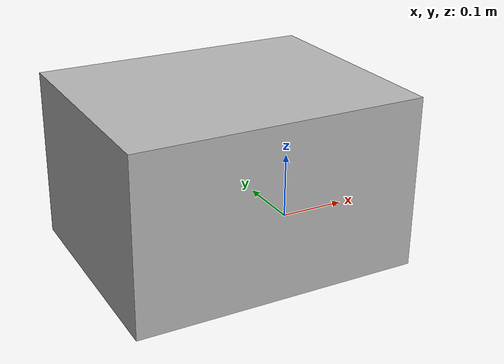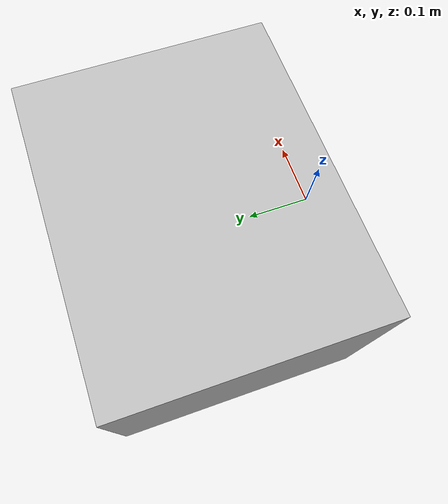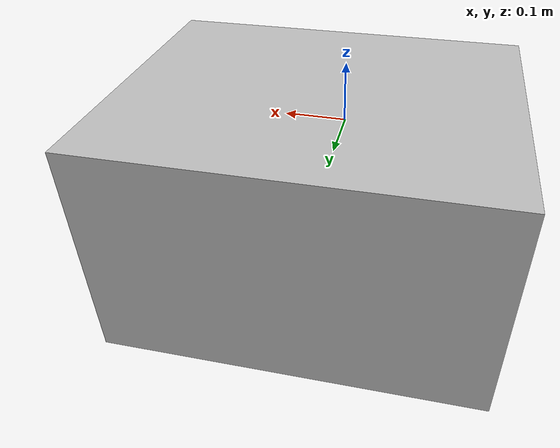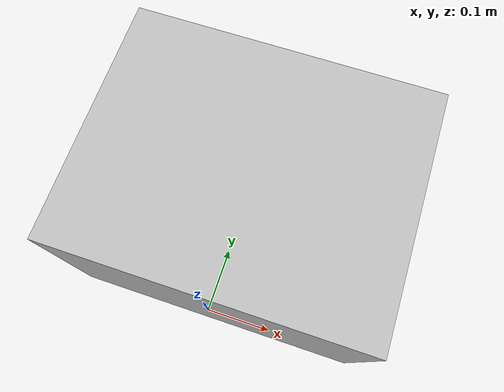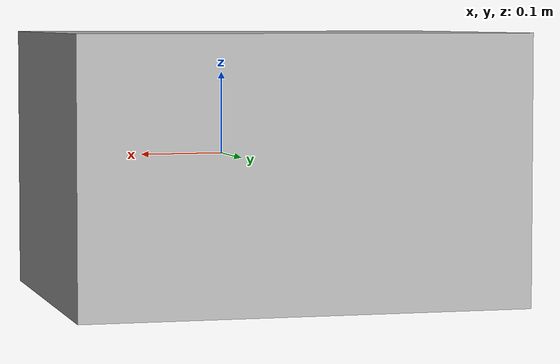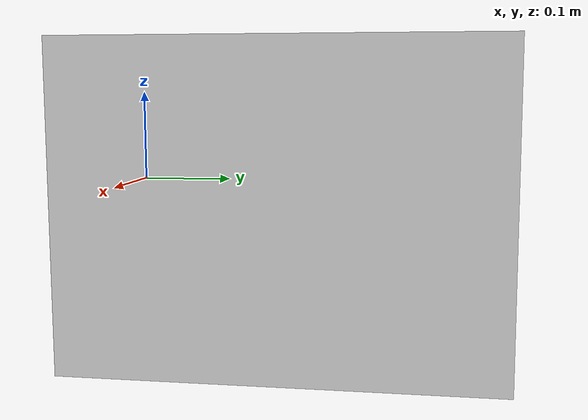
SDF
<sdf version="1.6">
    <model name="cardboard_box">
        <pose>0 0 0.15 0 0 0</pose>
        <link name="link">
            <inertial>
                <mass>2</mass>
                <inertia>
                    <ixx>0.041666667</ixx>
                    <ixy>0</ixy>
                    <ixz>0</ixz>
                    <iyy>0.056666667</iyy>
                    <iyz>0</iyz>
                    <izz>0.068333333</izz>
                </inertia>
            </inertial>
            <collision name="collision">
                <geometry>
                    <box>
                        <size>0.5 0.4 0.3</size>
                    </box>
                </geometry>
                <surface>
                    <friction>
                        <ode>
                            <mu>1.0</mu>
                            <mu2>1.0</mu2>
                        </ode>
                    </friction>
                    <contact>
                        <ode>
                            <kp>10000000.0</kp>
                            <kd>1.0</kd>
                            <min_depth>0.001</min_depth>
                            <max_vel>0.1</max_vel>
                        </ode>
                    </contact>
                </surface>
            </collision>
            <visual name="visual">
                <pose>0 0 -0.15 0 0 0</pose>
                <geometry>
                    <mesh>
                        <uri>meshes/cardboard_box.obj</uri>
                        <scale>1.25931896 1.007455168 0.755591376</scale>
                    </mesh>
                </geometry>
            </visual>
        </link>
    </model>
</sdf>
